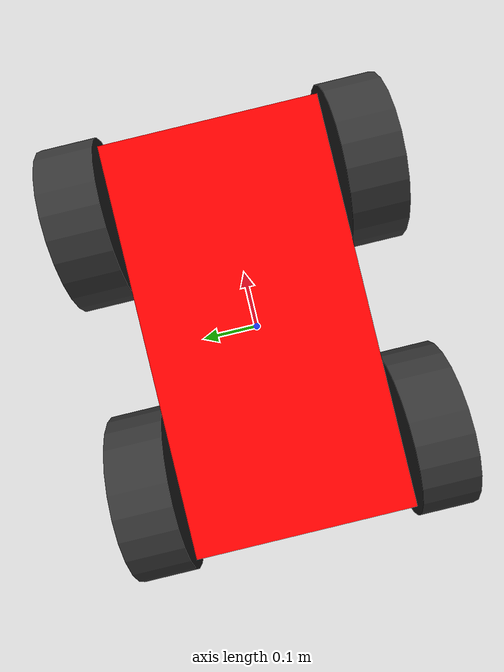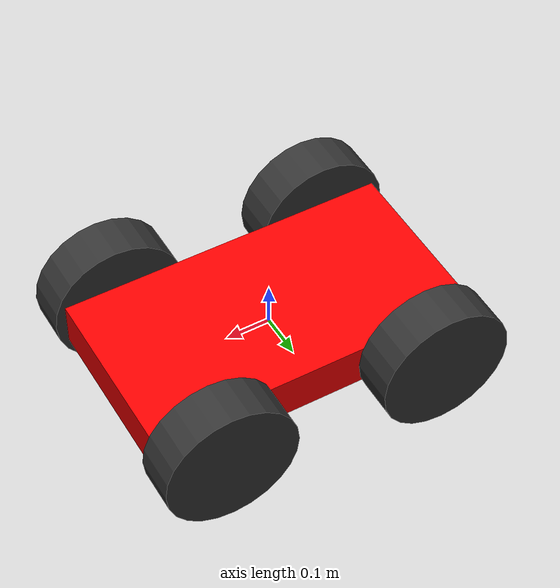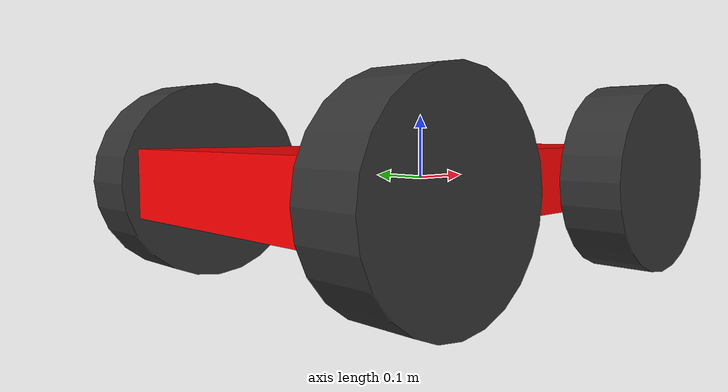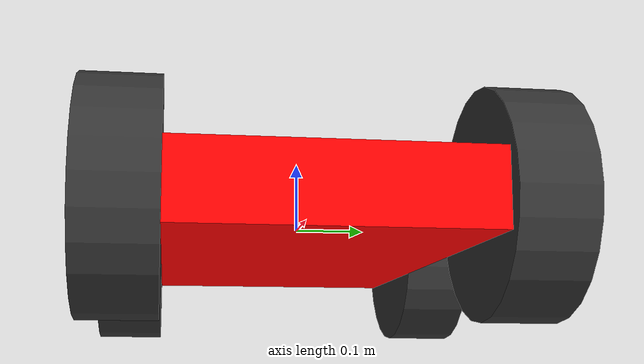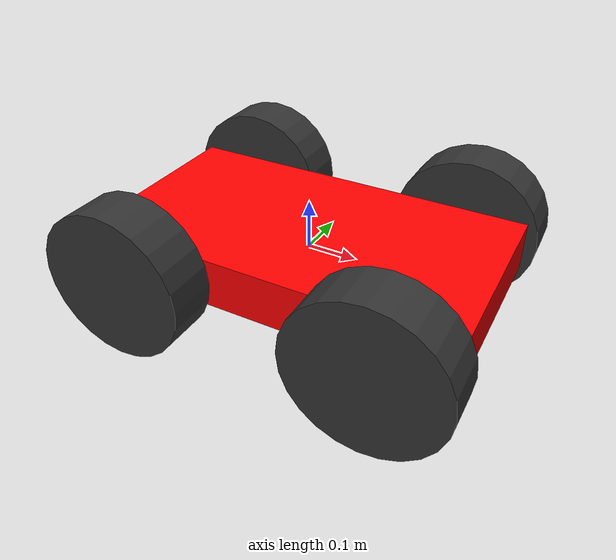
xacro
<?xml version="1.0"?>
<robot xmlns:xacro="http://ros.org/wiki/xacro" name="ackerman_drive">

    <link name="base_footprint">
    </link>

    <link name="base_link">
        <visual>
            <geometry>
                <box size="0.75 0.40 0.1"/>
            </geometry>
            <material name="red">
                <color rgba="1.0 0.0 0.0 1"/>
            </material>
        </visual>
    </link>

    <joint name="base_footprint_joint" type="fixed">
        <origin xyz="0 0 0" rpy="0 0 0"/>
        <parent link="base_footprint"/>
        <child link="base_link"/>
    </joint>

    <!-- xacro for wheels  -->
    <xacro:macro name="wheel" params="name x y parent">

        <link name="${name}_wheel">
            <visual>
                <geometry>
                    <cylinder radius="0.15" length="0.1"/>
                </geometry>
                <material name="gray">
                    <color rgba="0.2 0.2 0.2 1"/>
                </material>
            </visual>
        </link>

         <joint name="${name}_wheel_joint" type="continuous">
            <parent link="${parent}"/>
            <child link="${name}_wheel"/>
            <origin xyz="${x} ${y} 0" rpy="1.57 0 0.0"/>
            <axis xyz="0 0 1"/>
        </joint>
    </xacro:macro>

    <xacro:wheel name="front_right" x="0.10" y="0.25" parent="front_steer"/>
    <xacro:wheel name="front_left" x="0.10" y="-0.25" parent="front_steer"/>
    <xacro:wheel name="rear_right" x="-0.25" y="-0.25" parent="base_link"/>
    <xacro:wheel name="rear_left" x="-0.25" y="0.25" parent="base_link"/>

    <link name="front_steer">
    </link>

    <!-- 7 degree = 0.1122173 rad (upper and lower limit) -->
    <joint name="front_steer_joint" type="revolute">
        <parent link="base_link"/>
        <child link="front_steer"/>
        <origin xyz="0.15 0.0 0.0" rpy="0 0 0"/>
        <axis xyz="0 0 1"/>
        <limit lower="-0.122173" upper="0.122173" effort="1.0" velocity="1.0"/>
    </joint>

</robot>
